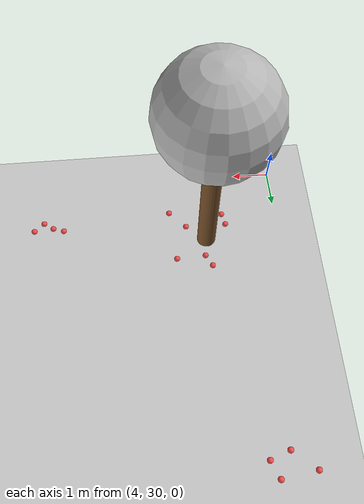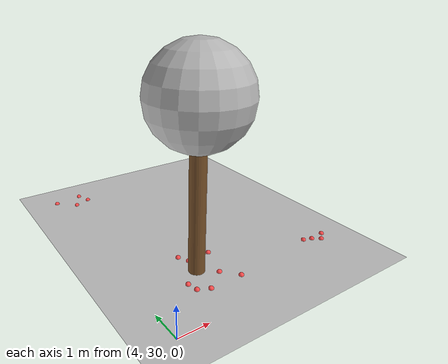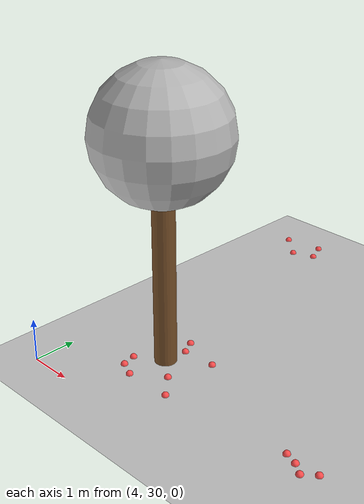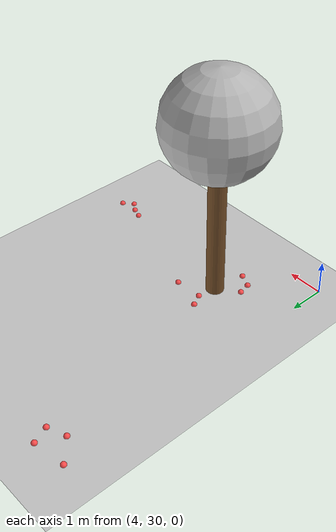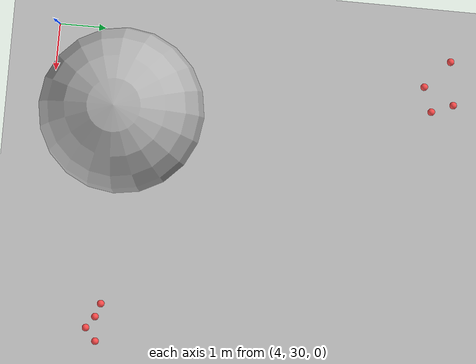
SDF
<sdf version="1.7">
 <world name="default">
  <model name="ground_plane">
   <static>1</static>
   <link name="link">
    <collision name="collision">
     <geometry><plane><normal>0 0 1</normal><size>100 100</size></plane></geometry>
     <surface>
      <contact><collide_bitmask>65535</collide_bitmask></contact>
      <friction><ode><mu>100</mu><mu2>50</mu2></ode></friction>
     </surface>
    </collision>
    <visual name="visual">
     <cast_shadows>0</cast_shadows>
     <geometry><plane><normal>0 0 1</normal><size>100 100</size></plane></geometry>
     <material>
      <script><uri>file://media/materials/scripts/gazebo.material</uri><name>Gazebo/Grey</name></script>
     </material>
    </visual>
   </link>
  </model>
  <model name="tree_simple_22">
   <static>1</static>
   <link name="link">
    <pose>0 0 0.1 0 -0 0</pose>
    <inertial>
     <mass>666</mass>
     <inertia>
      <ixx>0.0861167</ixx>
      <ixy>0</ixy>
      <ixz>0</ixz>
      <iyy>0.0861167</iyy>
      <iyz>0</iyz>
      <izz>0.0861167</izz>
     </inertia>
    </inertial>
    <collision name="collision_trunk">
     <pose>0 0 2 0 -0 0</pose>
     <geometry><cylinder><radius>0.25</radius><length>4</length></cylinder></geometry>
     <surface>
      <contact>
       <poissons_ratio>0.347</poissons_ratio>
       <elastic_modulus>8.8e+09</elastic_modulus>
       <ode><kp>100000</kp><kd>100</kd><max_vel>100</max_vel><min_depth>0.001</min_depth></ode>
      </contact>
      <friction>
       <torsional>
        <coefficient>1</coefficient>
        <use_patch_radius>0</use_patch_radius>
        <surface_radius>0.01</surface_radius>
       </torsional>
      </friction>
     </surface>
    </collision>
    <collision name="collision_treetop">
     <pose>0 0 5.2 0 -0 0</pose>
     <geometry><sphere><radius>1.5</radius></sphere></geometry>
     <surface>
      <contact>
       <poissons_ratio>0.347</poissons_ratio>
       <elastic_modulus>8.8e+09</elastic_modulus>
       <ode><kp>100000</kp><kd>100</kd><max_vel>100</max_vel><min_depth>0.001</min_depth></ode>
      </contact>
      <friction>
       <torsional>
        <coefficient>1</coefficient>
        <use_patch_radius>0</use_patch_radius>
        <surface_radius>0.01</surface_radius>
       </torsional>
      </friction>
     </surface>
    </collision>
    <visual name="trunk">
     <pose>0 0 2 0 -0 0</pose>
     <geometry><cylinder><radius>0.25</radius><length>4</length></cylinder></geometry>
     <material>
      <script>
       <uri>model://tree_simple/scripts</uri>
       <uri>model://tree_simple/materials/textures</uri>
       <name>TreeSimple/Trunk</name>
      </script>
     </material>
    </visual>
    <visual name="treetop">
     <pose>0 0 5.2 0 -0 0</pose>
     <geometry><sphere><radius>1.5</radius></sphere></geometry>
     <material>
      <script>
       <uri>model://tree_simple/scripts</uri>
       <uri>model://tree_simple/materials/textures</uri>
       <name>TreeSimple/Treetop</name>
      </script>
     </material>
    </visual>
   </link>
   <pose>6 32 -0.1 0 -0 0</pose>
  </model>
  <model name="seed_red_67">
   <link name="link">
    <inertial>
     <mass>1</mass>
     <inertia><ixx>0.1</ixx><ixy>0</ixy><ixz>0</ixz><iyy>0.1</iyy><iyz>0</iyz><izz>0.1</izz></inertia>
    </inertial>
    <visual name="visual">
     <geometry><sphere><radius>0.08</radius></sphere></geometry>
     <material>
      <script><name>Gazebo/Grey</name><uri>file://media/materials/scripts/gazebo.material</uri></script>
      <shader type="pixel"><normal_map>__default__</normal_map></shader>
      <ambient>1 0.3 0.3 1</ambient>
      <diffuse>0.7 0.7 0.7 1</diffuse>
      <specular>0.01 0.01 0.01 1</specular>
      <emissive>0 0 0 1</emissive>
     </material>
    </visual>
    <collision name="collision">
     <geometry><sphere><radius>0.0005</radius></sphere></geometry>
     <surface>
      <friction>
       <ode><mu>1</mu><mu2>1</mu2><fdir1>0 0 0</fdir1><slip1>0</slip1><slip2>0</slip2></ode>
       <torsional>
        <coefficient>1</coefficient>
        <patch_radius>0</patch_radius>
        <surface_radius>0</surface_radius>
        <use_patch_radius>1</use_patch_radius>
        <ode><slip>0</slip></ode>
       </torsional>
      </friction>
      <bounce><restitution_coefficient>0</restitution_coefficient><threshold>1e+06</threshold></bounce>
      <contact>
       <collide_without_contact>0</collide_without_contact>
       <collide_without_contact_bitmask>1</collide_without_contact_bitmask>
       <collide_bitmask>1</collide_bitmask>
       <ode>
        <soft_cfm>0</soft_cfm>
        <soft_erp>0.2</soft_erp>
        <kp>1e+13</kp>
        <kd>1</kd>
        <max_vel>0.01</max_vel>
        <min_depth>0</min_depth>
       </ode>
       <bullet>
        <split_impulse>1</split_impulse>
        <split_impulse_penetration_threshold>-0.01</split_impulse_penetration_threshold>
        <soft_cfm>0</soft_cfm>
        <soft_erp>0.2</soft_erp>
        <kp>1e+13</kp>
        <kd>1</kd>
       </bullet>
      </contact>
     </surface>
    </collision>
   </link>
   <static>0</static>
   <pose>4.0357 38.4756 0.0005 0 -0 0</pose>
  </model>
  <model name="seed_red_68">
   <link name="link">
    <inertial>
     <mass>1</mass>
     <inertia><ixx>0.1</ixx><ixy>0</ixy><ixz>0</ixz><iyy>0.1</iyy><iyz>0</iyz><izz>0.1</izz></inertia>
    </inertial>
    <visual name="visual">
     <geometry><sphere><radius>0.08</radius></sphere></geometry>
     <material>
      <script><name>Gazebo/Grey</name><uri>file://media/materials/scripts/gazebo.material</uri></script>
      <shader type="pixel"><normal_map>__default__</normal_map></shader>
      <ambient>1 0.3 0.3 1</ambient>
      <diffuse>0.7 0.7 0.7 1</diffuse>
      <specular>0.01 0.01 0.01 1</specular>
      <emissive>0 0 0 1</emissive>
     </material>
    </visual>
    <collision name="collision">
     <geometry><sphere><radius>0.0005</radius></sphere></geometry>
     <surface>
      <friction>
       <ode><mu>1</mu><mu2>1</mu2><fdir1>0 0 0</fdir1><slip1>0</slip1><slip2>0</slip2></ode>
       <torsional>
        <coefficient>1</coefficient>
        <patch_radius>0</patch_radius>
        <surface_radius>0</surface_radius>
        <use_patch_radius>1</use_patch_radius>
        <ode><slip>0</slip></ode>
       </torsional>
      </friction>
      <bounce><restitution_coefficient>0</restitution_coefficient><threshold>1e+06</threshold></bounce>
      <contact>
       <collide_without_contact>0</collide_without_contact>
       <collide_without_contact_bitmask>1</collide_without_contact_bitmask>
       <collide_bitmask>1</collide_bitmask>
       <ode>
        <soft_cfm>0</soft_cfm>
        <soft_erp>0.2</soft_erp>
        <kp>1e+13</kp>
        <kd>1</kd>
        <max_vel>0.01</max_vel>
        <min_depth>0</min_depth>
       </ode>
       <bullet>
        <split_impulse>1</split_impulse>
        <split_impulse_penetration_threshold>-0.01</split_impulse_penetration_threshold>
        <soft_cfm>0</soft_cfm>
        <soft_erp>0.2</soft_erp>
        <kp>1e+13</kp>
        <kd>1</kd>
       </bullet>
      </contact>
     </surface>
    </collision>
   </link>
   <static>0</static>
   <pose>4.6267 37.9583 0.0005 0 -0 0</pose>
  </model>
  <model name="seed_red_75">
   <link name="link">
    <inertial>
     <mass>1</mass>
     <inertia><ixx>0.1</ixx><ixy>0</ixy><ixz>0</ixz><iyy>0.1</iyy><iyz>0</iyz><izz>0.1</izz></inertia>
    </inertial>
    <visual name="visual">
     <geometry><sphere><radius>0.08</radius></sphere></geometry>
     <material>
      <script><name>Gazebo/Grey</name><uri>file://media/materials/scripts/gazebo.material</uri></script>
      <shader type="pixel"><normal_map>__default__</normal_map></shader>
      <ambient>1 0.3 0.3 1</ambient>
      <diffuse>0.7 0.7 0.7 1</diffuse>
      <specular>0.01 0.01 0.01 1</specular>
      <emissive>0 0 0 1</emissive>
     </material>
    </visual>
    <collision name="collision">
     <geometry><sphere><radius>0.0005</radius></sphere></geometry>
     <surface>
      <friction>
       <ode><mu>1</mu><mu2>1</mu2><fdir1>0 0 0</fdir1><slip1>0</slip1><slip2>0</slip2></ode>
       <torsional>
        <coefficient>1</coefficient>
        <patch_radius>0</patch_radius>
        <surface_radius>0</surface_radius>
        <use_patch_radius>1</use_patch_radius>
        <ode><slip>0</slip></ode>
       </torsional>
      </friction>
      <bounce><restitution_coefficient>0</restitution_coefficient><threshold>1e+06</threshold></bounce>
      <contact>
       <collide_without_contact>0</collide_without_contact>
       <collide_without_contact_bitmask>1</collide_without_contact_bitmask>
       <collide_bitmask>1</collide_bitmask>
       <ode>
        <soft_cfm>0</soft_cfm>
        <soft_erp>0.2</soft_erp>
        <kp>1e+13</kp>
        <kd>1</kd>
        <max_vel>0.01</max_vel>
        <min_depth>0</min_depth>
       </ode>
       <bullet>
        <split_impulse>1</split_impulse>
        <split_impulse_penetration_threshold>-0.01</split_impulse_penetration_threshold>
        <soft_cfm>0</soft_cfm>
        <soft_erp>0.2</soft_erp>
        <kp>1e+13</kp>
        <kd>1</kd>
       </bullet>
      </contact>
     </surface>
    </collision>
   </link>
   <static>0</static>
   <pose>5.15052 38.1592 0.0005 0 -0 0</pose>
  </model>
  <model name="seed_red_76">
   <link name="link">
    <inertial>
     <mass>1</mass>
     <inertia><ixx>0.1</ixx><ixy>0</ixy><ixz>0</ixz><iyy>0.1</iyy><iyz>0</iyz><izz>0.1</izz></inertia>
    </inertial>
    <visual name="visual">
     <geometry><sphere><radius>0.08</radius></sphere></geometry>
     <material>
      <script><name>Gazebo/Grey</name><uri>file://media/materials/scripts/gazebo.material</uri></script>
      <shader type="pixel"><normal_map>__default__</normal_map></shader>
      <ambient>1 0.3 0.3 1</ambient>
      <diffuse>0.7 0.7 0.7 1</diffuse>
      <specular>0.01 0.01 0.01 1</specular>
      <emissive>0 0 0 1</emissive>
     </material>
    </visual>
    <collision name="collision">
     <geometry><sphere><radius>0.0005</radius></sphere></geometry>
     <surface>
      <friction>
       <ode><mu>1</mu><mu2>1</mu2><fdir1>0 0 0</fdir1><slip1>0</slip1><slip2>0</slip2></ode>
       <torsional>
        <coefficient>1</coefficient>
        <patch_radius>0</patch_radius>
        <surface_radius>0</surface_radius>
        <use_patch_radius>1</use_patch_radius>
        <ode><slip>0</slip></ode>
       </torsional>
      </friction>
      <bounce><restitution_coefficient>0</restitution_coefficient><threshold>1e+06</threshold></bounce>
      <contact>
       <collide_without_contact>0</collide_without_contact>
       <collide_without_contact_bitmask>1</collide_without_contact_bitmask>
       <collide_bitmask>1</collide_bitmask>
       <ode>
        <soft_cfm>0</soft_cfm>
        <soft_erp>0.2</soft_erp>
        <kp>1e+13</kp>
        <kd>1</kd>
        <max_vel>0.01</max_vel>
        <min_depth>0</min_depth>
       </ode>
       <bullet>
        <split_impulse>1</split_impulse>
        <split_impulse_penetration_threshold>-0.01</split_impulse_penetration_threshold>
        <soft_cfm>0</soft_cfm>
        <soft_erp>0.2</soft_erp>
        <kp>1e+13</kp>
        <kd>1</kd>
       </bullet>
      </contact>
     </surface>
    </collision>
   </link>
   <static>0</static>
   <pose>4.96511 38.6171 0.0005 0 -0 0</pose>
  </model>
  <model name="seed_red_85">
   <link name="link">
    <inertial>
     <mass>1</mass>
     <inertia><ixx>0.1</ixx><ixy>0</ixy><ixz>0</ixz><iyy>0.1</iyy><iyz>0</iyz><izz>0.1</izz></inertia>
    </inertial>
    <visual name="visual">
     <geometry><sphere><radius>0.08</radius></sphere></geometry>
     <material>
      <script><name>Gazebo/Grey</name><uri>file://media/materials/scripts/gazebo.material</uri></script>
      <shader type="pixel"><normal_map>__default__</normal_map></shader>
      <ambient>1 0.3 0.3 1</ambient>
      <diffuse>0.7 0.7 0.7 1</diffuse>
      <specular>0.01 0.01 0.01 1</specular>
      <emissive>0 0 0 1</emissive>
     </material>
    </visual>
    <collision name="collision">
     <geometry><sphere><radius>0.0005</radius></sphere></geometry>
     <surface>
      <friction>
       <ode><mu>1</mu><mu2>1</mu2><fdir1>0 0 0</fdir1><slip1>0</slip1><slip2>0</slip2></ode>
       <torsional>
        <coefficient>1</coefficient>
        <patch_radius>0</patch_radius>
        <surface_radius>0</surface_radius>
        <use_patch_radius>1</use_patch_radius>
        <ode><slip>0</slip></ode>
       </torsional>
      </friction>
      <bounce><restitution_coefficient>0</restitution_coefficient><threshold>1e+06</threshold></bounce>
      <contact>
       <collide_without_contact>0</collide_without_contact>
       <collide_without_contact_bitmask>1</collide_without_contact_bitmask>
       <collide_bitmask>1</collide_bitmask>
       <ode>
        <soft_cfm>0</soft_cfm>
        <soft_erp>0.2</soft_erp>
        <kp>1e+13</kp>
        <kd>1</kd>
        <max_vel>0.01</max_vel>
        <min_depth>0</min_depth>
       </ode>
       <bullet>
        <split_impulse>1</split_impulse>
        <split_impulse_penetration_threshold>-0.01</split_impulse_penetration_threshold>
        <soft_cfm>0</soft_cfm>
        <soft_erp>0.2</soft_erp>
        <kp>1e+13</kp>
        <kd>1</kd>
       </bullet>
      </contact>
     </surface>
    </collision>
   </link>
   <static>0</static>
   <pose>5.48554 31.2509 0.0005 0 -0 0</pose>
  </model>
  <model name="seed_red_86">
   <link name="link">
    <inertial>
     <mass>1</mass>
     <inertia><ixx>0.1</ixx><ixy>0</ixy><ixz>0</ixz><iyy>0.1</iyy><iyz>0</iyz><izz>0.1</izz></inertia>
    </inertial>
    <visual name="visual">
     <geometry><sphere><radius>0.08</radius></sphere></geometry>
     <material>
      <script><name>Gazebo/Grey</name><uri>file://media/materials/scripts/gazebo.material</uri></script>
      <shader type="pixel"><normal_map>__default__</normal_map></shader>
      <ambient>1 0.3 0.3 1</ambient>
      <diffuse>0.7 0.7 0.7 1</diffuse>
      <specular>0.01 0.01 0.01 1</specular>
      <emissive>0 0 0 1</emissive>
     </material>
    </visual>
    <collision name="collision">
     <geometry><sphere><radius>0.0005</radius></sphere></geometry>
     <surface>
      <friction>
       <ode><mu>1</mu><mu2>1</mu2><fdir1>0 0 0</fdir1><slip1>0</slip1><slip2>0</slip2></ode>
       <torsional>
        <coefficient>1</coefficient>
        <patch_radius>0</patch_radius>
        <surface_radius>0</surface_radius>
        <use_patch_radius>1</use_patch_radius>
        <ode><slip>0</slip></ode>
       </torsional>
      </friction>
      <bounce><restitution_coefficient>0</restitution_coefficient><threshold>1e+06</threshold></bounce>
      <contact>
       <collide_without_contact>0</collide_without_contact>
       <collide_without_contact_bitmask>1</collide_without_contact_bitmask>
       <collide_bitmask>1</collide_bitmask>
       <ode>
        <soft_cfm>0</soft_cfm>
        <soft_erp>0.2</soft_erp>
        <kp>1e+13</kp>
        <kd>1</kd>
        <max_vel>0.01</max_vel>
        <min_depth>0</min_depth>
       </ode>
       <bullet>
        <split_impulse>1</split_impulse>
        <split_impulse_penetration_threshold>-0.01</split_impulse_penetration_threshold>
        <soft_cfm>0</soft_cfm>
        <soft_erp>0.2</soft_erp>
        <kp>1e+13</kp>
        <kd>1</kd>
       </bullet>
      </contact>
     </surface>
    </collision>
   </link>
   <static>0</static>
   <pose>5.90709 32.8513 0.0005 0 -0 0</pose>
  </model>
  <model name="seed_red_87">
   <link name="link">
    <inertial>
     <mass>1</mass>
     <inertia><ixx>0.1</ixx><ixy>0</ixy><ixz>0</ixz><iyy>0.1</iyy><iyz>0</iyz><izz>0.1</izz></inertia>
    </inertial>
    <visual name="visual">
     <geometry><sphere><radius>0.08</radius></sphere></geometry>
     <material>
      <script><name>Gazebo/Grey</name><uri>file://media/materials/scripts/gazebo.material</uri></script>
      <shader type="pixel"><normal_map>__default__</normal_map></shader>
      <ambient>1 0.3 0.3 1</ambient>
      <diffuse>0.7 0.7 0.7 1</diffuse>
      <specular>0.01 0.01 0.01 1</specular>
      <emissive>0 0 0 1</emissive>
     </material>
    </visual>
    <collision name="collision">
     <geometry><sphere><radius>0.0005</radius></sphere></geometry>
     <surface>
      <friction>
       <ode><mu>1</mu><mu2>1</mu2><fdir1>0 0 0</fdir1><slip1>0</slip1><slip2>0</slip2></ode>
       <torsional>
        <coefficient>1</coefficient>
        <patch_radius>0</patch_radius>
        <surface_radius>0</surface_radius>
        <use_patch_radius>1</use_patch_radius>
        <ode><slip>0</slip></ode>
       </torsional>
      </friction>
      <bounce><restitution_coefficient>0</restitution_coefficient><threshold>1e+06</threshold></bounce>
      <contact>
       <collide_without_contact>0</collide_without_contact>
       <collide_without_contact_bitmask>1</collide_without_contact_bitmask>
       <collide_bitmask>1</collide_bitmask>
       <ode>
        <soft_cfm>0</soft_cfm>
        <soft_erp>0.2</soft_erp>
        <kp>1e+13</kp>
        <kd>1</kd>
        <max_vel>0.01</max_vel>
        <min_depth>0</min_depth>
       </ode>
       <bullet>
        <split_impulse>1</split_impulse>
        <split_impulse_penetration_threshold>-0.01</split_impulse_penetration_threshold>
        <soft_cfm>0</soft_cfm>
        <soft_erp>0.2</soft_erp>
        <kp>1e+13</kp>
        <kd>1</kd>
       </bullet>
      </contact>
     </surface>
    </collision>
   </link>
   <static>0</static>
   <pose>6.07223 32.5282 0.0005 0 -0 0</pose>
  </model>
  <model name="seed_red_88">
   <link name="link">
    <inertial>
     <mass>1</mass>
     <inertia><ixx>0.1</ixx><ixy>0</ixy><ixz>0</ixz><iyy>0.1</iyy><iyz>0</iyz><izz>0.1</izz></inertia>
    </inertial>
    <visual name="visual">
     <geometry><sphere><radius>0.08</radius></sphere></geometry>
     <material>
      <script><name>Gazebo/Grey</name><uri>file://media/materials/scripts/gazebo.material</uri></script>
      <shader type="pixel"><normal_map>__default__</normal_map></shader>
      <ambient>1 0.3 0.3 1</ambient>
      <diffuse>0.7 0.7 0.7 1</diffuse>
      <specular>0.01 0.01 0.01 1</specular>
      <emissive>0 0 0 1</emissive>
     </material>
    </visual>
    <collision name="collision">
     <geometry><sphere><radius>0.0005</radius></sphere></geometry>
     <surface>
      <friction>
       <ode><mu>1</mu><mu2>1</mu2><fdir1>0 0 0</fdir1><slip1>0</slip1><slip2>0</slip2></ode>
       <torsional>
        <coefficient>1</coefficient>
        <patch_radius>0</patch_radius>
        <surface_radius>0</surface_radius>
        <use_patch_radius>1</use_patch_radius>
        <ode><slip>0</slip></ode>
       </torsional>
      </friction>
      <bounce><restitution_coefficient>0</restitution_coefficient><threshold>1e+06</threshold></bounce>
      <contact>
       <collide_without_contact>0</collide_without_contact>
       <collide_without_contact_bitmask>1</collide_without_contact_bitmask>
       <collide_bitmask>1</collide_bitmask>
       <ode>
        <soft_cfm>0</soft_cfm>
        <soft_erp>0.2</soft_erp>
        <kp>1e+13</kp>
        <kd>1</kd>
        <max_vel>0.01</max_vel>
        <min_depth>0</min_depth>
       </ode>
       <bullet>
        <split_impulse>1</split_impulse>
        <split_impulse_penetration_threshold>-0.01</split_impulse_penetration_threshold>
        <soft_cfm>0</soft_cfm>
        <soft_erp>0.2</soft_erp>
        <kp>1e+13</kp>
        <kd>1</kd>
       </bullet>
      </contact>
     </surface>
    </collision>
   </link>
   <static>0</static>
   <pose>6.52086 31.5736 0.0005 0 -0 0</pose>
  </model>
  <model name="seed_red_89">
   <link name="link">
    <inertial>
     <mass>1</mass>
     <inertia><ixx>0.1</ixx><ixy>0</ixy><ixz>0</ixz><iyy>0.1</iyy><iyz>0</iyz><izz>0.1</izz></inertia>
    </inertial>
    <visual name="visual">
     <geometry><sphere><radius>0.08</radius></sphere></geometry>
     <material>
      <script><name>Gazebo/Grey</name><uri>file://media/materials/scripts/gazebo.material</uri></script>
      <shader type="pixel"><normal_map>__default__</normal_map></shader>
      <ambient>1 0.3 0.3 1</ambient>
      <diffuse>0.7 0.7 0.7 1</diffuse>
      <specular>0.01 0.01 0.01 1</specular>
      <emissive>0 0 0 1</emissive>
     </material>
    </visual>
    <collision name="collision">
     <geometry><sphere><radius>0.0005</radius></sphere></geometry>
     <surface>
      <friction>
       <ode><mu>1</mu><mu2>1</mu2><fdir1>0 0 0</fdir1><slip1>0</slip1><slip2>0</slip2></ode>
       <torsional>
        <coefficient>1</coefficient>
        <patch_radius>0</patch_radius>
        <surface_radius>0</surface_radius>
        <use_patch_radius>1</use_patch_radius>
        <ode><slip>0</slip></ode>
       </torsional>
      </friction>
      <bounce><restitution_coefficient>0</restitution_coefficient><threshold>1e+06</threshold></bounce>
      <contact>
       <collide_without_contact>0</collide_without_contact>
       <collide_without_contact_bitmask>1</collide_without_contact_bitmask>
       <collide_bitmask>1</collide_bitmask>
       <ode>
        <soft_cfm>0</soft_cfm>
        <soft_erp>0.2</soft_erp>
        <kp>1e+13</kp>
        <kd>1</kd>
        <max_vel>0.01</max_vel>
        <min_depth>0</min_depth>
       </ode>
       <bullet>
        <split_impulse>1</split_impulse>
        <split_impulse_penetration_threshold>-0.01</split_impulse_penetration_threshold>
        <soft_cfm>0</soft_cfm>
        <soft_erp>0.2</soft_erp>
        <kp>1e+13</kp>
        <kd>1</kd>
       </bullet>
      </contact>
     </surface>
    </collision>
   </link>
   <static>0</static>
   <pose>6.85735 32.5728 0.0005 0 -0 0</pose>
  </model>
  <model name="seed_red_90">
   <link name="link">
    <inertial>
     <mass>1</mass>
     <inertia><ixx>0.1</ixx><ixy>0</ixy><ixz>0</ixz><iyy>0.1</iyy><iyz>0</iyz><izz>0.1</izz></inertia>
    </inertial>
    <visual name="visual">
     <geometry><sphere><radius>0.08</radius></sphere></geometry>
     <material>
      <script><name>Gazebo/Grey</name><uri>file://media/materials/scripts/gazebo.material</uri></script>
      <shader type="pixel"><normal_map>__default__</normal_map></shader>
      <ambient>1 0.3 0.3 1</ambient>
      <diffuse>0.7 0.7 0.7 1</diffuse>
      <specular>0.01 0.01 0.01 1</specular>
      <emissive>0 0 0 1</emissive>
     </material>
    </visual>
    <collision name="collision">
     <geometry><sphere><radius>0.0005</radius></sphere></geometry>
     <surface>
      <friction>
       <ode><mu>1</mu><mu2>1</mu2><fdir1>0 0 0</fdir1><slip1>0</slip1><slip2>0</slip2></ode>
       <torsional>
        <coefficient>1</coefficient>
        <patch_radius>0</patch_radius>
        <surface_radius>0</surface_radius>
        <use_patch_radius>1</use_patch_radius>
        <ode><slip>0</slip></ode>
       </torsional>
      </friction>
      <bounce><restitution_coefficient>0</restitution_coefficient><threshold>1e+06</threshold></bounce>
      <contact>
       <collide_without_contact>0</collide_without_contact>
       <collide_without_contact_bitmask>1</collide_without_contact_bitmask>
       <collide_bitmask>1</collide_bitmask>
       <ode>
        <soft_cfm>0</soft_cfm>
        <soft_erp>0.2</soft_erp>
        <kp>1e+13</kp>
        <kd>1</kd>
        <max_vel>0.01</max_vel>
        <min_depth>0</min_depth>
       </ode>
       <bullet>
        <split_impulse>1</split_impulse>
        <split_impulse_penetration_threshold>-0.01</split_impulse_penetration_threshold>
        <soft_cfm>0</soft_cfm>
        <soft_erp>0.2</soft_erp>
        <kp>1e+13</kp>
        <kd>1</kd>
       </bullet>
      </contact>
     </surface>
    </collision>
   </link>
   <static>0</static>
   <pose>6.95585 31.0956 0.0005 0 -0 0</pose>
  </model>
  <model name="seed_red_91">
   <link name="link">
    <inertial>
     <mass>1</mass>
     <inertia><ixx>0.1</ixx><ixy>0</ixy><ixz>0</ixz><iyy>0.1</iyy><iyz>0</iyz><izz>0.1</izz></inertia>
    </inertial>
    <visual name="visual">
     <geometry><sphere><radius>0.08</radius></sphere></geometry>
     <material>
      <script><name>Gazebo/Grey</name><uri>file://media/materials/scripts/gazebo.material</uri></script>
      <shader type="pixel"><normal_map>__default__</normal_map></shader>
      <ambient>1 0.3 0.3 1</ambient>
      <diffuse>0.7 0.7 0.7 1</diffuse>
      <specular>0.01 0.01 0.01 1</specular>
      <emissive>0 0 0 1</emissive>
     </material>
    </visual>
    <collision name="collision">
     <geometry><sphere><radius>0.0005</radius></sphere></geometry>
     <surface>
      <friction>
       <ode><mu>1</mu><mu2>1</mu2><fdir1>0 0 0</fdir1><slip1>0</slip1><slip2>0</slip2></ode>
       <torsional>
        <coefficient>1</coefficient>
        <patch_radius>0</patch_radius>
        <surface_radius>0</surface_radius>
        <use_patch_radius>1</use_patch_radius>
        <ode><slip>0</slip></ode>
       </torsional>
      </friction>
      <bounce><restitution_coefficient>0</restitution_coefficient><threshold>1e+06</threshold></bounce>
      <contact>
       <collide_without_contact>0</collide_without_contact>
       <collide_without_contact_bitmask>1</collide_without_contact_bitmask>
       <collide_bitmask>1</collide_bitmask>
       <ode>
        <soft_cfm>0</soft_cfm>
        <soft_erp>0.2</soft_erp>
        <kp>1e+13</kp>
        <kd>1</kd>
        <max_vel>0.01</max_vel>
        <min_depth>0</min_depth>
       </ode>
       <bullet>
        <split_impulse>1</split_impulse>
        <split_impulse_penetration_threshold>-0.01</split_impulse_penetration_threshold>
        <soft_cfm>0</soft_cfm>
        <soft_erp>0.2</soft_erp>
        <kp>1e+13</kp>
        <kd>1</kd>
       </bullet>
      </contact>
     </surface>
    </collision>
   </link>
   <static>0</static>
   <pose>5.41391 31.5792 0.0005 0 -0 0</pose>
  </model>
  <model name="seed_red_92">
   <link name="link">
    <inertial>
     <mass>1</mass>
     <inertia><ixx>0.1</ixx><ixy>0</ixy><ixz>0</ixz><iyy>0.1</iyy><iyz>0</iyz><izz>0.1</izz></inertia>
    </inertial>
    <visual name="visual">
     <geometry><sphere><radius>0.08</radius></sphere></geometry>
     <material>
      <script><name>Gazebo/Grey</name><uri>file://media/materials/scripts/gazebo.material</uri></script>
      <shader type="pixel"><normal_map>__default__</normal_map></shader>
      <ambient>1 0.3 0.3 1</ambient>
      <diffuse>0.7 0.7 0.7 1</diffuse>
      <specular>0.01 0.01 0.01 1</specular>
      <emissive>0 0 0 1</emissive>
     </material>
    </visual>
    <collision name="collision">
     <geometry><sphere><radius>0.0005</radius></sphere></geometry>
     <surface>
      <friction>
       <ode><mu>1</mu><mu2>1</mu2><fdir1>0 0 0</fdir1><slip1>0</slip1><slip2>0</slip2></ode>
       <torsional>
        <coefficient>1</coefficient>
        <patch_radius>0</patch_radius>
        <surface_radius>0</surface_radius>
        <use_patch_radius>1</use_patch_radius>
        <ode><slip>0</slip></ode>
       </torsional>
      </friction>
      <bounce><restitution_coefficient>0</restitution_coefficient><threshold>1e+06</threshold></bounce>
      <contact>
       <collide_without_contact>0</collide_without_contact>
       <collide_without_contact_bitmask>1</collide_without_contact_bitmask>
       <collide_bitmask>1</collide_bitmask>
       <ode>
        <soft_cfm>0</soft_cfm>
        <soft_erp>0.2</soft_erp>
        <kp>1e+13</kp>
        <kd>1</kd>
        <max_vel>0.01</max_vel>
        <min_depth>0</min_depth>
       </ode>
       <bullet>
        <split_impulse>1</split_impulse>
        <split_impulse_penetration_threshold>-0.01</split_impulse_penetration_threshold>
        <soft_cfm>0</soft_cfm>
        <soft_erp>0.2</soft_erp>
        <kp>1e+13</kp>
        <kd>1</kd>
       </bullet>
      </contact>
     </surface>
    </collision>
   </link>
   <static>0</static>
   <pose>5.84945 31.0826 0.0005 0 -0 0</pose>
  </model>
  <model name="seed_red_99">
   <link name="link">
    <inertial>
     <mass>1</mass>
     <inertia><ixx>0.1</ixx><ixy>0</ixy><ixz>0</ixz><iyy>0.1</iyy><iyz>0</iyz><izz>0.1</izz></inertia>
    </inertial>
    <visual name="visual">
     <geometry><sphere><radius>0.08</radius></sphere></geometry>
     <material>
      <script><name>Gazebo/Grey</name><uri>file://media/materials/scripts/gazebo.material</uri></script>
      <shader type="pixel"><normal_map>__default__</normal_map></shader>
      <ambient>1 0.3 0.3 1</ambient>
      <diffuse>0.7 0.7 0.7 1</diffuse>
      <specular>0.01 0.01 0.01 1</specular>
      <emissive>0 0 0 1</emissive>
     </material>
    </visual>
    <collision name="collision">
     <geometry><sphere><radius>0.0005</radius></sphere></geometry>
     <surface>
      <friction>
       <ode><mu>1</mu><mu2>1</mu2><fdir1>0 0 0</fdir1><slip1>0</slip1><slip2>0</slip2></ode>
       <torsional>
        <coefficient>1</coefficient>
        <patch_radius>0</patch_radius>
        <surface_radius>0</surface_radius>
        <use_patch_radius>1</use_patch_radius>
        <ode><slip>0</slip></ode>
       </torsional>
      </friction>
      <bounce><restitution_coefficient>0</restitution_coefficient><threshold>1e+06</threshold></bounce>
      <contact>
       <collide_without_contact>0</collide_without_contact>
       <collide_without_contact_bitmask>1</collide_without_contact_bitmask>
       <collide_bitmask>1</collide_bitmask>
       <ode>
        <soft_cfm>0</soft_cfm>
        <soft_erp>0.2</soft_erp>
        <kp>1e+13</kp>
        <kd>1</kd>
        <max_vel>0.01</max_vel>
        <min_depth>0</min_depth>
       </ode>
       <bullet>
        <split_impulse>1</split_impulse>
        <split_impulse_penetration_threshold>-0.01</split_impulse_penetration_threshold>
        <soft_cfm>0</soft_cfm>
        <soft_erp>0.2</soft_erp>
        <kp>1e+13</kp>
        <kd>1</kd>
       </bullet>
      </contact>
     </surface>
    </collision>
   </link>
   <static>0</static>
   <pose>9.93153 31.4425 0.0005 0 -0 0</pose>
  </model>
  <model name="seed_red_100">
   <link name="link">
    <inertial>
     <mass>1</mass>
     <inertia><ixx>0.1</ixx><ixy>0</ixy><ixz>0</ixz><iyy>0.1</iyy><iyz>0</iyz><izz>0.1</izz></inertia>
    </inertial>
    <visual name="visual">
     <geometry><sphere><radius>0.08</radius></sphere></geometry>
     <material>
      <script><name>Gazebo/Grey</name><uri>file://media/materials/scripts/gazebo.material</uri></script>
      <shader type="pixel"><normal_map>__default__</normal_map></shader>
      <ambient>1 0.3 0.3 1</ambient>
      <diffuse>0.7 0.7 0.7 1</diffuse>
      <specular>0.01 0.01 0.01 1</specular>
      <emissive>0 0 0 1</emissive>
     </material>
    </visual>
    <collision name="collision">
     <geometry><sphere><radius>0.0005</radius></sphere></geometry>
     <surface>
      <friction>
       <ode><mu>1</mu><mu2>1</mu2><fdir1>0 0 0</fdir1><slip1>0</slip1><slip2>0</slip2></ode>
       <torsional>
        <coefficient>1</coefficient>
        <patch_radius>0</patch_radius>
        <surface_radius>0</surface_radius>
        <use_patch_radius>1</use_patch_radius>
        <ode><slip>0</slip></ode>
       </torsional>
      </friction>
      <bounce><restitution_coefficient>0</restitution_coefficient><threshold>1e+06</threshold></bounce>
      <contact>
       <collide_without_contact>0</collide_without_contact>
       <collide_without_contact_bitmask>1</collide_without_contact_bitmask>
       <collide_bitmask>1</collide_bitmask>
       <ode>
        <soft_cfm>0</soft_cfm>
        <soft_erp>0.2</soft_erp>
        <kp>1e+13</kp>
        <kd>1</kd>
        <max_vel>0.01</max_vel>
        <min_depth>0</min_depth>
       </ode>
       <bullet>
        <split_impulse>1</split_impulse>
        <split_impulse_penetration_threshold>-0.01</split_impulse_penetration_threshold>
        <soft_cfm>0</soft_cfm>
        <soft_erp>0.2</soft_erp>
        <kp>1e+13</kp>
        <kd>1</kd>
       </bullet>
      </contact>
     </surface>
    </collision>
   </link>
   <static>0</static>
   <pose>10.4752 31.1654 0.0005 0 -0 0</pose>
  </model>
  <model name="seed_red_103">
   <link name="link">
    <inertial>
     <mass>1</mass>
     <inertia><ixx>0.1</ixx><ixy>0</ixy><ixz>0</ixz><iyy>0.1</iyy><iyz>0</iyz><izz>0.1</izz></inertia>
    </inertial>
    <visual name="visual">
     <geometry><sphere><radius>0.08</radius></sphere></geometry>
     <material>
      <script><name>Gazebo/Grey</name><uri>file://media/materials/scripts/gazebo.material</uri></script>
      <shader type="pixel"><normal_map>__default__</normal_map></shader>
      <ambient>1 0.3 0.3 1</ambient>
      <diffuse>0.7 0.7 0.7 1</diffuse>
      <specular>0.01 0.01 0.01 1</specular>
      <emissive>0 0 0 1</emissive>
     </material>
    </visual>
    <collision name="collision">
     <geometry><sphere><radius>0.0005</radius></sphere></geometry>
     <surface>
      <friction>
       <ode><mu>1</mu><mu2>1</mu2><fdir1>0 0 0</fdir1><slip1>0</slip1><slip2>0</slip2></ode>
       <torsional>
        <coefficient>1</coefficient>
        <patch_radius>0</patch_radius>
        <surface_radius>0</surface_radius>
        <use_patch_radius>1</use_patch_radius>
        <ode><slip>0</slip></ode>
       </torsional>
      </friction>
      <bounce><restitution_coefficient>0</restitution_coefficient><threshold>1e+06</threshold></bounce>
      <contact>
       <collide_without_contact>0</collide_without_contact>
       <collide_without_contact_bitmask>1</collide_without_contact_bitmask>
       <collide_bitmask>1</collide_bitmask>
       <ode>
        <soft_cfm>0</soft_cfm>
        <soft_erp>0.2</soft_erp>
        <kp>1e+13</kp>
        <kd>1</kd>
        <max_vel>0.01</max_vel>
        <min_depth>0</min_depth>
       </ode>
       <bullet>
        <split_impulse>1</split_impulse>
        <split_impulse_penetration_threshold>-0.01</split_impulse_penetration_threshold>
        <soft_cfm>0</soft_cfm>
        <soft_erp>0.2</soft_erp>
        <kp>1e+13</kp>
        <kd>1</kd>
       </bullet>
      </contact>
     </surface>
    </collision>
   </link>
   <static>0</static>
   <pose>10.2216 31.3445 0.0005 0 -0 0</pose>
  </model>
  <model name="seed_red_105">
   <link name="link">
    <inertial>
     <mass>1</mass>
     <inertia><ixx>0.1</ixx><ixy>0</ixy><ixz>0</ixz><iyy>0.1</iyy><iyz>0</iyz><izz>0.1</izz></inertia>
    </inertial>
    <visual name="visual">
     <geometry><sphere><radius>0.08</radius></sphere></geometry>
     <material>
      <script><name>Gazebo/Grey</name><uri>file://media/materials/scripts/gazebo.material</uri></script>
      <shader type="pixel"><normal_map>__default__</normal_map></shader>
      <ambient>1 0.3 0.3 1</ambient>
      <diffuse>0.7 0.7 0.7 1</diffuse>
      <specular>0.01 0.01 0.01 1</specular>
      <emissive>0 0 0 1</emissive>
     </material>
    </visual>
    <collision name="collision">
     <geometry><sphere><radius>0.0005</radius></sphere></geometry>
     <surface>
      <friction>
       <ode><mu>1</mu><mu2>1</mu2><fdir1>0 0 0</fdir1><slip1>0</slip1><slip2>0</slip2></ode>
       <torsional>
        <coefficient>1</coefficient>
        <patch_radius>0</patch_radius>
        <surface_radius>0</surface_radius>
        <use_patch_radius>1</use_patch_radius>
        <ode><slip>0</slip></ode>
       </torsional>
      </friction>
      <bounce><restitution_coefficient>0</restitution_coefficient><threshold>1e+06</threshold></bounce>
      <contact>
       <collide_without_contact>0</collide_without_contact>
       <collide_without_contact_bitmask>1</collide_without_contact_bitmask>
       <collide_bitmask>1</collide_bitmask>
       <ode>
        <soft_cfm>0</soft_cfm>
        <soft_erp>0.2</soft_erp>
        <kp>1e+13</kp>
        <kd>1</kd>
        <max_vel>0.01</max_vel>
        <min_depth>0</min_depth>
       </ode>
       <bullet>
        <split_impulse>1</split_impulse>
        <split_impulse_penetration_threshold>-0.01</split_impulse_penetration_threshold>
        <soft_cfm>0</soft_cfm>
        <soft_erp>0.2</soft_erp>
        <kp>1e+13</kp>
        <kd>1</kd>
       </bullet>
      </contact>
     </surface>
    </collision>
   </link>
   <static>0</static>
   <pose>10.7479 31.3953 0.0005 0 -0 0</pose>
  </model>
 </world>
</sdf>
